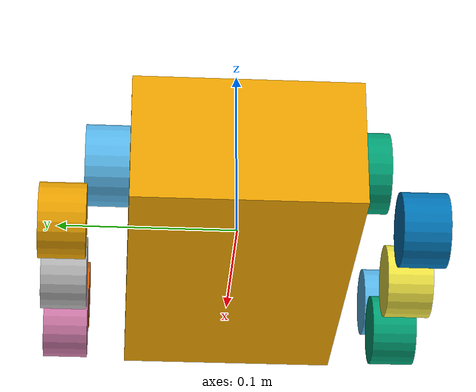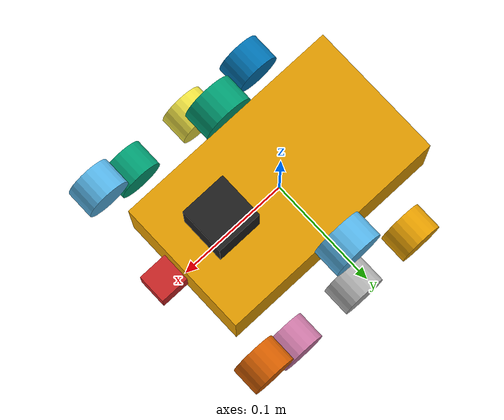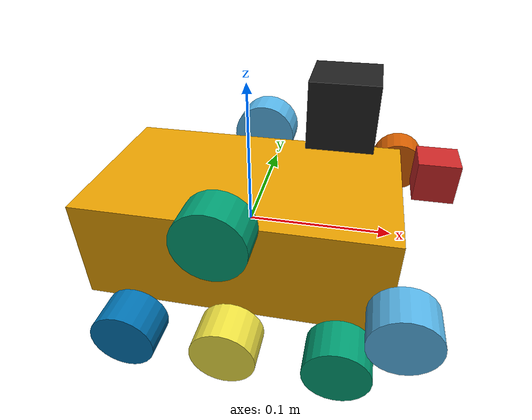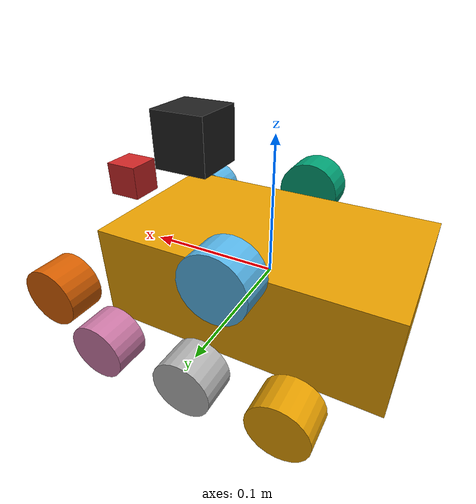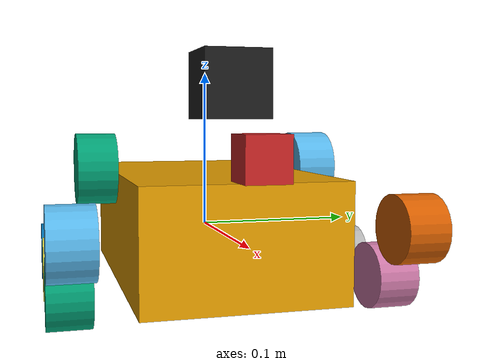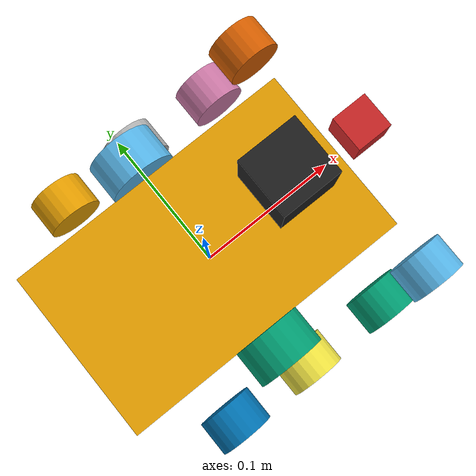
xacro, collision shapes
<?xml version="1.0"?>
<robot name="devastator" xmlns:xacro="http://www.ros.org/wiki/xacro">

  <xacro:property name="cameraSize" value="0.025"/>
  <xacro:property name="cameraMass" value="0.1"/>

  <xacro:include filename="$(find devastator)/devastator_description/urdf/devastator_laser.gazebo.xacro" />
  <!--xacro:include filename="$(find mybot_description)/urdf/materials.xacro" /-->
  <xacro:include filename="$(find mybot_description)/urdf/macros.xacro" />

<link name="base_link">
	<visual>
		<origin rpy="0 0 0" xyz="0 0 0"/>
		<geometry>
			<mesh filename="package://devastator/devastator_description/meshes/base/base_new.dae"/>
		</geometry>
    </visual>

	<collision>
		<origin xyz="0.0 0.0 0.0" rpy="0 0 0"/>
		<geometry>
			<box size="0.20576 0.12131 0.07112"/>
		</geometry>
	</collision>

	<inertial>
		<origin xyz="0 0 0" rpy="0 0 0"/>
		<mass value="5.40e-01"/>

	<inertia ixx="2.2124416e-03" ixy="-1.2294101e-05" ixz="3.4938785e-05"
               iyy="2.1193702e-03" iyz="-5.0120904e-06"
               izz="2.0064271e-03" />
	</inertial>
</link>

<!-- Right Wheels -->
<link name="wheel_one_right">

	<visual>
		<origin rpy="0 0 0" xyz="0 0 0"/>
		<geometry>
			<mesh filename="package://devastator/devastator_description/meshes/wheels/wheel_basic.dae"/>
		</geometry>
	</visual>

	<collision>
		<origin xyz="0 0 0" rpy="1.57 0 0"/>
		<geometry>
			<cylinder length="0.025" radius="0.020" />
		</geometry>
	</collision>

	<inertial>

		<origin xyz="0 0 0" rpy="0 0 0"/>
		<mass value="1.2e-02"/>

		<inertia ixx="1.1175580e-05" ixy="-4.2369783e-11" ixz="-5.9381719e-09"
				iyy="1.1192413e-05" iyz="-1.4400107e-11"
               izz="2.0712558e-05" />
	</inertial>
</link>

<joint name="wheel_one_right" type="continuous">
	<parent link="base_link"/>
	<child link="wheel_one_right"/>
	<origin xyz="0.10538 -0.095 0.008" rpy="0 0 0"/>
	<axis xyz="0 1 0"/>
</joint>

<link name="wheel_two_right">
	<visual>
		<origin rpy="0 0 0" xyz="0 0 0"/>
		<geometry>
			<mesh filename="package://devastator/devastator_description/meshes/wheels/wheel_basic.dae"/>
		</geometry>
	</visual>

	<collision>
		<origin xyz="0 0 0" rpy="1.57 0 0"/>
		<geometry>
			<cylinder length="0.025" radius="0.020" />
		</geometry>
	</collision>

	<inertial>

		<origin xyz="0 0 0" rpy="0 0 0"/>
		<mass value="1.2e-02"/>

		<inertia ixx="3.0153996560e-03" ixy="0.0" ixz="1.7522996572e-11"
					iyy="4.0932945308e-03" iyz="0.0"
					izz="3.0153987822e-03"/>
	</inertial>

</link>

<joint name="wheel_two_right" type="continuous">
	<parent link="base_link"/>
	<child link="wheel_two_right"/>
	<origin xyz="0.07363 -0.095 -0.025" rpy="0 0 0"/>
	<limit effort="100" velocity="100"/>
    <joint_properties damping="0.0" friction="0.0"/>
	<axis xyz="0 1 0"/>
</joint>

<link name="wheel_three_right">
	<visual>
		<origin rpy="0 0 0" xyz="0 0 0"/>
		<geometry>
			<mesh filename="package://devastator/devastator_description/meshes/wheels/wheel_basic.dae"/>
		</geometry>
	</visual>

	<collision>
		<origin xyz="0 0 0" rpy="1.57 0 0"/>
		<geometry>
			<cylinder length="0.025" radius="0.020" />
		</geometry>
	</collision>

	<inertial>

		<origin xyz="0 0 0" rpy="0 0 0"/>
		<mass value="1.2e-02"/>

		<inertia ixx="1.1175580e-05" ixy="-4.2369783e-11" ixz="-5.9381719e-09"
				iyy="1.1192413e-05" iyz="-1.4400107e-11"
               izz="2.0712558e-05" />
	</inertial>
</link>

<joint name="wheel_three_right" type="continuous">
	<parent link="base_link"/>
	<child link="wheel_three_right"/>
	<origin xyz="0.00765 -0.095 -0.025" rpy="0 0 0"/>
	<limit effort="100" velocity="100"/>
    <joint_properties damping="0.0" friction="0.0"/>
	<axis xyz="0 1 0"/>
</joint>

<link name="wheel_four_right">
	<visual>
		<origin rpy="0 0 0" xyz="0 0 0"/>
		<geometry>
			<mesh filename="package://devastator/devastator_description/meshes/wheels/wheel_basic.dae"/>
		</geometry>
	</visual>

	<collision>
		<origin xyz="0 0 0" rpy="1.57 0 0"/>
		<geometry>
			<cylinder length="0.025" radius="0.020" />
		</geometry>
	</collision>

	<inertial>

		<origin xyz="0 0 0" rpy="0 0 0"/>
		<mass value="1.2e-02"/>

		<inertia ixx="1.1175580e-05" ixy="-4.2369783e-11" ixz="-5.9381719e-09"
				iyy="1.1192413e-05" iyz="-1.4400107e-11"
               izz="2.0712558e-05" />
	</inertial>
</link>

<joint name="wheel_four_right" type="continuous">
	<parent link="base_link"/>
	<child link="wheel_four_right"/>
	<origin xyz="-0.05464 -0.095 -0.025" rpy="0 0 0"/>
	<limit effort="100" velocity="100"/>
    <joint_properties damping="0.0" friction="0.0"/>
	<axis xyz="0 1 0"/>
</joint>

<link name="wheel_one_left">
	<visual>
		<origin rpy="0 0 3.14159" xyz="0 0 0"/>
		<geometry>
			<mesh filename="package://devastator/devastator_description/meshes/wheels/wheel_basic.dae"/>
		</geometry>
	</visual>

	<collision>
		<origin xyz="0 0 0" rpy="1.57 0 0"/>
		<geometry>
			<cylinder length="0.025" radius="0.020" />
		</geometry>
	</collision>

	<inertial>

		<origin xyz="0 0 0" rpy="0 0 0"/>
		<mass value="1.2e-02"/>

		<inertia ixx="1.1175580e-05" ixy="-4.2369783e-11" ixz="-5.9381719e-09"
				iyy="1.1192413e-05" iyz="-1.4400107e-11"
               izz="2.0712558e-05" />
	</inertial>

</link>

<joint name="wheel_one_left" type="continuous">
	<parent link="base_link"/>
	<child link="wheel_one_left"/>
	<origin xyz="0.10538 0.095  0.008" rpy="0 0 0"/>
	<limit effort="100" velocity="100"/>
    <joint_properties damping="0.0" friction="0.0"/>
	<axis xyz="0 1 0"/>
</joint>

<link name="wheel_two_left">
	<visual>
		<origin rpy="0 0 3.14159" xyz="0 0 0"/>
		<geometry>
			<mesh filename="package://devastator/devastator_description/meshes/wheels/wheel_basic.dae"/>
		</geometry>
	</visual>

	<collision>
		<origin xyz="0 0 0" rpy="1.57 0 0"/>
		<geometry>
			<cylinder length="0.025" radius="0.020" />
		</geometry>
	</collision>

	<inertial>

		<origin xyz="0 0 0" rpy="0 0 0"/>
		<mass value="1.2e-02"/>

		<inertia ixx="1.1175580e-05" ixy="-4.2369783e-11" ixz="-5.9381719e-09"
				iyy="1.1192413e-05" iyz="-1.4400107e-11"
               izz="2.0712558e-05" />
	</inertial>
</link>

<joint name="wheel_two_left" type="continuous">
	<parent link="base_link"/>
	<child link="wheel_two_left"/>
	<origin xyz="0.07363 0.095  -0.025" rpy="0 0 0"/>
	<limit effort="100" velocity="100"/>
    <joint_properties damping="0.0" friction="0.0"/>
	<axis xyz="0 1 0"/>
</joint>

<link name="wheel_three_left">
	<visual>
		<origin rpy="0 0 3.14159" xyz="0 0 0"/>
		<geometry>
			<mesh filename="package://devastator/devastator_description/meshes/wheels/wheel_basic.dae"/>
		</geometry>
	</visual>

	<collision>
		<origin xyz="0 0 0" rpy="1.57 0 0"/>
		<geometry>
			<cylinder length="0.025" radius="0.020" />
		</geometry>
	</collision>

	<inertial>

		<origin xyz="0 0 0" rpy="0 0 0"/>
		<mass value="1.2e-02"/>

		<inertia ixx="1.1175580e-05" ixy="-4.2369783e-11" ixz="-5.9381719e-09"
				iyy="1.1192413e-05" iyz="-1.4400107e-11"
               izz="2.0712558e-05" />
	</inertial>
</link>

<joint name="wheel_three_left" type="continuous">
	<parent link="base_link"/>
	<child link="wheel_three_left"/>
	<origin xyz="0.00765 0.095  -0.025" rpy="0 0 0"/>
	<limit effort="100" velocity="100"/>
    <joint_properties damping="0.0" friction="0.0"/>
	<axis xyz="0 1 0"/>
</joint>

<link name="wheel_four_left">
	<visual>
		<origin rpy="0 0 3.14159" xyz="0 0 0"/>
		<geometry>
			<mesh filename="package://devastator/devastator_description/meshes/wheels/wheel_basic.dae"/>
		</geometry>
	</visual>

	<collision>
		<origin xyz="0 0 0" rpy="1.57 0 0"/>
		<geometry>
			<cylinder length="0.025" radius="0.020" />
		</geometry>
	</collision>

	<inertial>

		<origin xyz="0 0 0" rpy="0 0 0"/>
		<mass value="1.2e-02"/>

		<inertia ixx="1.1175580e-05" ixy="-4.2369783e-11" ixz="-5.9381719e-09"
				iyy="1.1192413e-05" iyz="-1.4400107e-11"
               izz="2.0712558e-05" />
	</inertial>

</link>

<joint name="wheel_four_left" type="continuous">
	<parent link="base_link"/>
	<child link="wheel_four_left"/>
	<origin xyz="-0.05464 0.095 -0.025" rpy="0 0 0"/>
	<limit effort="100" velocity="100"/>
    <joint_properties damping="0.0" friction="0.0"/>
	<axis xyz="0 1 0"/>
</joint>

<link name="tracked_wheel_right">
	<visual>
		<origin rpy="0 0 0" xyz="0 0 0"/>
		<geometry>
			<mesh filename="package://devastator/devastator_description/meshes/wheels/wheel_track.dae"/>
		</geometry>
	</visual>

	<collision>
		<origin xyz="0 0 0" rpy="0 0 0"/>
		<geometry>
			<cylinder length="0.025" radius="0.023" />
		</geometry>
	</collision>

	<inertial>

		<origin xyz="0 0 0" rpy="0 0 0"/>
		<mass value="9.0e-02"/>

		<inertia ixx="1.1175580e-05" ixy="-4.2369783e-11" ixz="-5.9381719e-09"
				iyy="1.1192413e-05" iyz="-1.4400107e-11"
               izz="2.0712558e-05" />
	</inertial>
</link>

<joint name="tracked_wheel_right" type="continuous">
	<parent link="base_link"/>
	<child link="tracked_wheel_right"/>
	<origin xyz="-0.0027 0.073 0.0375" rpy="-1.57 0 -3.14"/>
	<limit effort="100" velocity="100"/>
    <joint_properties damping="0.0" friction="0.0"/>
	<axis xyz="0 0 1"/>
</joint>

<link name="tracked_wheel_left">
	<visual>
		<origin rpy="0 0 0" xyz="0 0 0"/>
		<geometry>
			<mesh filename="package://devastator/devastator_description/meshes/wheels/wheel_track.dae"/>
		</geometry>
	</visual>

	<collision>
		<origin xyz="0 0 0" rpy="0 0 0"/>
		<geometry>
			<cylinder length="0.025" radius="0.023" />
		</geometry>
	</collision>

	<inertial>

		<origin xyz="0 0 0" rpy="0 0 0"/>
		<mass value="9.0e-02"/>

		<inertia ixx="1.1175580e-05" ixy="-4.2369783e-11" ixz="-5.9381719e-09"
				iyy="1.1192413e-05" iyz="-1.4400107e-11"
               izz="2.0712558e-05" />
	</inertial>
</link>

<joint name="tracked_wheel_left" type="continuous">
	<parent link="base_link"/>
	<child link="tracked_wheel_left"/>
	<origin xyz="-0.0027 -0.073  0.0375" rpy="-1.57 0 0"/>
	<limit effort="100" velocity="100"/>
    <joint_properties damping="0.0" friction="0.0"/>
	<axis xyz="0 0 1"/>
</joint>

<link name="camera">
    <collision>
      <origin xyz="0 0 0" rpy="0 0 0"/>
      <geometry>
        <box size="${cameraSize} ${cameraSize} ${cameraSize}"/>
      </geometry>
    </collision>

    <visual>
      <origin xyz="0 0 0" rpy="0 0 0"/>
      <geometry>
        <box size="${cameraSize} ${cameraSize} ${cameraSize}"/>
      </geometry>
	</visual>

    <inertial>
      <mass value="${cameraMass}" />
      <origin xyz="0 0 0" rpy="0 0 0"/>
      <box_inertia m="${cameraMass}" x="${cameraSize}" y="${cameraSize}" z="${cameraSize}" />
      <inertia ixx="1.0e-6" ixy="0.0" ixz="0.0"
	  iyy="1.0e-6" iyz="0.0" izz="1.0e-6" />
    </inertial>
</link>

  <joint name="camera_joint" type="fixed">
    <axis xyz="0 1 0" />
	<origin xyz="0.12 0 0.05" rpy="0 0 0"/>

    <parent link="base_link"/>
    <child link="camera"/>
  </joint>

<link name="hokuyo">
    <collision>
      <origin xyz="0 0 0" rpy="0 0 0"/>
      <geometry>
		<box size="0.04 0.04 0.04"/>
      </geometry>
    </collision>

    <visual>
      <origin xyz="0 0 0" rpy="0 0 0"/>
      <geometry>
        <mesh filename="package://devastator/devastator_description/meshes/sensors/hokuyo.dae"/>
      </geometry>

    </visual>

    <inertial>
      <mass value="${cameraMass}" />
      <origin xyz="0 0 0" rpy="0 0 0"/>
      <box_inertia m="${cameraMass}" x="${cameraSize}" y="${cameraSize}" z="${cameraSize}" />
      <inertia ixx="1.0e-6" ixy="0.0" ixz="0.0"
	  iyy="1.0e-6" iyz="0.0" izz="1.0e-6" />
    </inertial>
</link>

  <joint name="hokuyo_joint" type="fixed">
    <axis xyz="0 1 0" />
	<origin xyz="0.06 0 0.09" rpy="0 0 0"/>

    <parent link="base_link"/>
    <child link="hokuyo"/>
  </joint>

</robot>

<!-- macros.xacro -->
<robot>
  <macro name="cylinder_inertia" params="m r h">
    <inertia  ixx="${m*(3*r*r+h*h)/12}" ixy = "0" ixz = "0"
      iyy="${m*(3*r*r+h*h)/12}" iyz = "0"
      izz="${m*r*r/2}"
    />
  </macro>

  <macro name="box_inertia" params="m x y z">
    <inertia  ixx="${m*(y*y+z*z)/12}" ixy = "0" ixz = "0"
      iyy="${m*(x*x+z*z)/12}" iyz = "0"
      izz="${m*(x*x+z*z)/12}"
    />
  </macro>

  <macro name="sphere_inertia" params="m r">
    <inertia  ixx="${2*m*r*r/5}" ixy = "0" ixz = "0"
      iyy="${2*m*r*r/5}" iyz = "0"
      izz="${2*m*r*r/5}"
    />
  </macro>

</robot>
